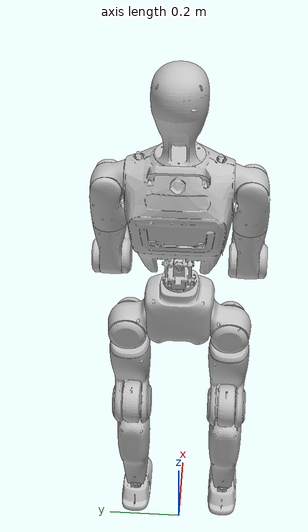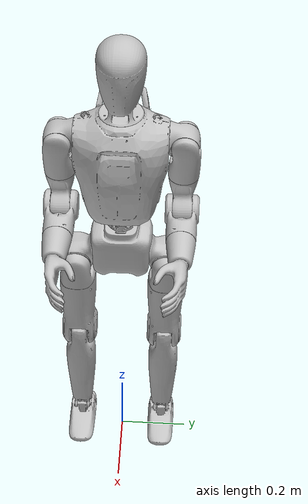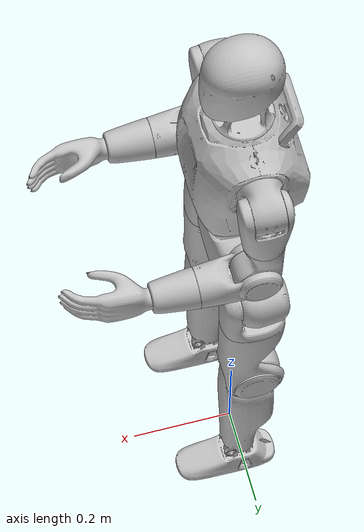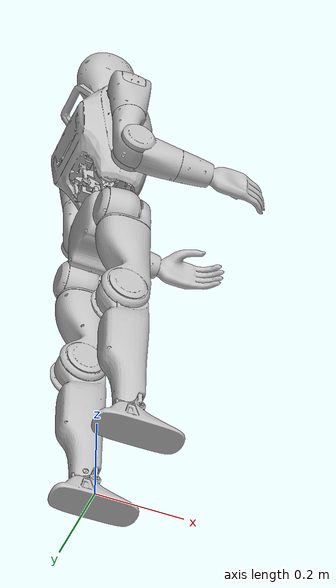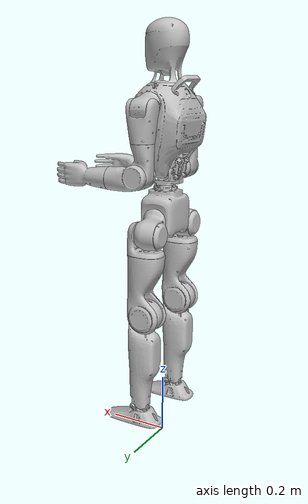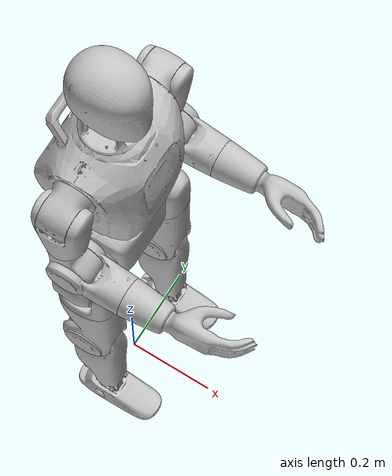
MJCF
<mujoco model="LRS-XURDF0210QJ">
  <compiler angle="radian" meshdir="./meshes/"/>

  <asset>
    <mesh name="pelvis" file="pelvis.STL"/>
    <mesh name="waist_yaw_link" file="waist_yaw_link.STL"/>
    <mesh name="waist_roll_link" file="waist_roll_link.STL"/>
    <mesh name="waist_pitch_link" file="waist_pitch_link.STL"/>
    <mesh name="head_link" file="head_link.STL"/>
    <mesh name="left_shoulder_pitch_link" file="left_shoulder_pitch_link.STL"/>
    <mesh name="left_shoulder_roll_link" file="left_shoulder_roll_link.STL"/>
    <mesh name="left_shoulder_yaw_link" file="left_shoulder_yaw_link.STL"/>
    <mesh name="left_elbow_link" file="left_elbow_link.STL"/>
    <mesh name="left_wrist_roll_link" file="left_wrist_roll_link.STL"/>
    <mesh name="right_shoulder_pitch_link" file="right_shoulder_pitch_link.STL"/>
    <mesh name="right_shoulder_roll_link" file="right_shoulder_roll_link.STL"/>
    <mesh name="right_shoulder_yaw_link" file="right_shoulder_yaw_link.STL"/>
    <mesh name="right_elbow_link" file="right_elbow_link.STL"/>
    <mesh name="right_wrist_roll_link" file="right_wrist_roll_link.STL"/>
    <mesh name="left_hip_pitch_link" file="left_hip_pitch_link.STL"/>
    <mesh name="left_hip_roll_link" file="left_hip_roll_link.STL"/>
    <mesh name="left_hip_yaw_link" file="left_hip_yaw_link.STL"/>
    <mesh name="left_knee_link" file="left_knee_link.STL"/>
    <mesh name="left_ankle_pitch_link" file="left_ankle_pitch_link.STL"/>
    <mesh name="left_ankle_roll_link" file="left_ankle_roll_link.STL"/>
    <mesh name="right_hip_pitch_link" file="right_hip_pitch_link.STL"/>
    <mesh name="right_hip_yaw_link" file="right_hip_yaw_link.STL"/>
    <mesh name="right_knee_link" file="right_knee_link.STL"/>
    <mesh name="right_ankle_pitch_link" file="right_ankle_pitch_link.STL"/>
    <mesh name="right_ankle_roll_link" file="right_ankle_roll_link.STL"/>
  </asset>

  <worldbody>
    <body name = 'pelvis' pos = '0 0 0.9' euler = '0 0 0'>
      <inertial pos="-0.00103313928053411 0.000382585123602887 -0.0864613171896089" mass="1.84951140169722" diaginertia="0.00320766832900481 0.00259257440658102 0.00273340858466264" />
      <joint type="free" />
      <site name = "imu" size = "0.01" pos = "0 0 0" />
      <geom type="mesh" contype="0" conaffinity="0" group="1" density="0" rgba="0.752941 0.752941 0.752941 1" mesh="pelvis"/>
      <geom size="0.06 0.075 0.06" pos="0 0 -0.1" type="box" contype="1" conaffinity="6" group="4" rgba="0.752941 0.752941 0.752941 1"/>
      <geom type="mesh" contype="0" conaffinity="0" group="1" density="0" rgba="0.752941 0.752941 0.752941 1" mesh="waist_yaw_link"/>
      <geom pos="0 -1.9533e-05 0.041" quat="1 0 0 0" type="mesh" contype="0" conaffinity="0" group="1" density="0" rgba="0.752941 0.752941 0.752941 1" mesh="waist_roll_link"/>
      <geom pos="0 -1.9533e-05 0.041" type="mesh" contype="0" conaffinity="0" group="1" density="0" rgba="0.752941 0.752941 0.752941 1" mesh="waist_pitch_link"/>
      <geom size="0.1 0.1125 0.15" pos="0 -1.9533e-05 0.181" type="box" contype="1" conaffinity="6" group="4" rgba="0.752941 0.752941 0.752941 1"/>
      <geom pos="-0.001747 -1.9533e-05 0.32738" quat="1 0 0 0" type="mesh" contype="0" conaffinity="0" group="1" density="0" rgba="0.752941 0.752941 0.752941 1" mesh="head_link"/>
      <geom size="0.075 0.06 0.075" pos="-0.001747 -1.9533e-05 0.45738" type="box" contype="1" conaffinity="6" group="4" rgba="0.752941 0.752941 0.752941 1"/>
      <geom pos="-1.4518e-05 0.11358 0.26628" type="mesh" contype="0" conaffinity="0" group="1" density="0" rgba="0.752941 0.752941 0.752941 1" mesh="left_shoulder_pitch_link"/>
      <geom pos="0.0275005 0.15758 0.254266" quat="1 0 0 0" type="mesh" contype="0" conaffinity="0" group="1" density="0" rgba="0.752941 0.752941 0.752941 1" mesh="left_shoulder_roll_link"/>
      <geom size="0.035 0.035 0.075" pos="-0.00249952 0.15758 0.204266" type="box" contype="1" conaffinity="6" group="4" rgba="0.752941 0.752941 0.752941 1"/>
      <geom pos="4.82e-07 0.157566 0.149676" quat="1 0 0 0" type="mesh" contype="0" conaffinity="0" group="1" density="0" rgba="0.752941 0.752941 0.752941 1" mesh="left_shoulder_yaw_link"/>
      <geom pos="0.0119855 0.185081 0.043976" quat="0.707105 0 -0.707108 0" type="mesh" contype="0" conaffinity="0" group="1" density="0" rgba="0.752941 0.752941 0.752941 1" mesh="left_elbow_link"/>
      <geom size="0.035 0.035 0.1" pos="0.111985 0.155081 0.0439764" quat="0.707105 0 -0.707108 0" type="box" contype="1" conaffinity="6" group="4" rgba="0.752941 0.752941 0.752941 1"/>
      <geom pos="0.121686 0.157581 0.0319764" quat="0.707105 0 -0.707108 0" type="mesh" contype="0" conaffinity="0" group="1" density="0" rgba="0.752941 0.752941 0.752941 1" mesh="left_wrist_roll_link"/>
      <geom size="0.035 0.04 0.075" pos="0.291686 0.137581 0.031977" quat="0.707105 0 -0.707108 0" type="box" contype="1" conaffinity="6" group="4" rgba="0.752941 0.752941 0.752941 1"/>
      <geom pos="-1.4518e-05 -0.11362 0.26628" type="mesh" contype="0" conaffinity="0" group="1" density="0" rgba="0.752941 0.752941 0.752941 1" mesh="right_shoulder_pitch_link"/>
      <geom pos="0.0275005 -0.15662 0.254266" quat="1 0 0 0" type="mesh" contype="0" conaffinity="0" group="1" density="0" rgba="0.752941 0.752941 0.752941 1" mesh="right_shoulder_roll_link"/>
      <geom size="0.035 0.035 0.075" pos="-0.00249952 -0.15662 0.204266" type="box" contype="1" conaffinity="6" group="4" rgba="0.752941 0.752941 0.752941 1"/>
      <geom pos="4.82e-07 -0.156605 0.149676" quat="1 0 0 0" type="mesh" contype="0" conaffinity="0" group="1" density="0" rgba="0.752941 0.752941 0.752941 1" mesh="right_shoulder_yaw_link"/>
      <geom pos="0.0119855 -0.18412 0.043976" quat="0.707105 0 -0.707108 0" type="mesh" contype="0" conaffinity="0" group="1" density="0" rgba="0.752941 0.752941 0.752941 1" mesh="right_elbow_link"/>
      <geom size="0.035 0.035 0.1" pos="0.111985 -0.15412 0.0439764" quat="0.707105 0 -0.707108 0" type="box" contype="1" conaffinity="6" group="4" rgba="0.752941 0.752941 0.752941 1"/>
      <geom pos="0.121686 -0.15662 0.0319764" quat="0.707105 0 -0.707108 0" type="mesh" contype="0" conaffinity="0" group="1" density="0" rgba="0.752941 0.752941 0.752941 1" mesh="right_wrist_roll_link"/>
      <geom size="0.035 0.04 0.075" pos="0.291686 -0.13662 0.031977" quat="0.707105 0 -0.707108 0" type="box" contype="1" conaffinity="6" group="4" rgba="0.752941 0.752941 0.752941 1"/>
      <body name="left_hip_pitch_link" pos="0 0.07298 -0.1131">
        <inertial pos="-0.0113615 0.0470713 -0.0342248" quat="0.919133 0.355089 0.162199 -0.0528993" mass="1.32446" diaginertia="0.00146172 0.00139988 0.0010828"/>
        <joint name="left_hip_pitch_joint" pos="0 0 0" axis="0 1 0" range="-2.69 2.69" actuatorfrcrange="-90 90"/>
        <geom type="mesh" contype="0" conaffinity="0" group="1" density="0" rgba="0.752941 0.752941 0.752941 1" mesh="left_hip_pitch_link"/>
        <body name="left_hip_roll_link" pos="0.019 0.05008 -0.036909">
          <inertial pos="0.0045843 2.09e-05 -0.0296417" quat="0.968845 0 0.247668 0" mass="0.34034" diaginertia="0.000505551 0.0004944 0.000232649"/>
          <joint name="left_hip_roll_joint" pos="0 0 0" axis="1 0 0" range="-0.52 2.97" actuatorfrcrange="-60 60"/>
          <geom type="mesh" contype="0" conaffinity="0" group="1" density="0" rgba="0.752941 0.752941 0.752941 1" mesh="left_hip_roll_link"/>
          <geom size="0.06 0.04 0.1" pos="-0.016 0 -0.1" type="box" contype="1" conaffinity="6" group="4" rgba="0.752941 0.752941 0.752941 1"/>
          <body name="left_hip_yaw_link" pos="-0.016491 0 -0.066991">
            <inertial pos="0.003642 0.007695 -0.0796255" quat="0.621261 0.0394935 -0.066286 0.779796" mass="2.09922" diaginertia="0.0113902 0.0112647 0.00236318"/>
            <joint name="left_hip_yaw_joint" pos="0 0 0" axis="0 0 1" range="-2.76 2.76" actuatorfrcrange="-60 60"/>
            <geom type="mesh" contype="0" conaffinity="0" group="1" density="0" rgba="0.752941 0.752941 0.752941 1" mesh="left_hip_yaw_link"/>
            <body name="left_knee_link" pos="-0.0025064 0.02402 -0.21064">
              <inertial pos="0.0064688 -0.0264025 -0.102822" quat="0.728248 -0.0100789 -0.0310592 0.684535" mass="3.49098" diaginertia="0.0328485 0.0324447 0.0027993"/>
              <joint name="left_knee_joint" pos="0 0 0" axis="0 1 0" range="-0.09 2.53" actuatorfrcrange="-90 90"/>
              <geom type="mesh" contype="0" conaffinity="0" group="1" density="0" rgba="0.752941 0.752941 0.752941 1" mesh="left_knee_link"/>
              <geom size="0.05 0.0375 0.16" pos="0.01 -0.025 -0.15" type="box" contype="1" conaffinity="6" group="4" rgba="0.752941 0.752941 0.752941 1"/>
              <body name="left_ankle_pitch_link" pos="0.014 -0.024 -0.3225">
                <inertial pos="0 0 -0.0072252" mass="0.0528192" diaginertia="6.7e-06 5.9e-06 3.3e-06"/>
                <joint name="left_ankle_pitch_joint" pos="0 0 0" axis="0 1 0" range="-0.52 0.87" actuatorfrcrange="-20 20"/>
                <geom type="mesh" contype="0" conaffinity="0" group="1" density="0" rgba="0.752941 0.752941 0.752941 1" mesh="left_ankle_pitch_link"/>
                <body name="left_ankle_roll_link" pos="0 0 -0.0165">
                  <inertial pos="0.0154117 5.7e-06 -0.0291423" quat="0.484591 0.515035 0.514902 0.484547" mass="0.480722" diaginertia="0.0009044 0.000839975 0.000332225"/>
                  <joint name="left_ankle_roll_joint" pos="0 0 0" axis="1 0 0" range="-0.26 0.26" actuatorfrcrange="-20 20"/>
                  <geom type="mesh" contype="0" conaffinity="0" group="1" density="0" rgba="0.752941 0.752941 0.752941 1" mesh="left_ankle_roll_link"/>
                  <geom size="0.1 0.05 0.01" pos="0.023 0 -0.0425" type="box" contype="1" conaffinity="6" group="4" rgba="0.752941 0.752941 0.752941 1"/>
                </body>
              </body>
            </body>
          </body>
        </body>
      </body>
      <body name="right_hip_pitch_link" pos="0 -0.07302 -0.1131">
        <inertial pos="-0.0113616 -0.0470894 -0.0342258" quat="0.919155 -0.355384 0.161893 0.0514442" mass="1.32442" diaginertia="0.00146183 0.00139911 0.00108355"/>
        <joint name="right_hip_pitch_joint" pos="0 0 0" axis="0 1 0" range="-2.69 2.69" actuatorfrcrange="-90 90"/>
        <geom type="mesh" contype="0" conaffinity="0" group="1" density="0" rgba="0.752941 0.752941 0.752941 1" mesh="right_hip_pitch_link"/>
        <body name="right_hip_roll_link" pos="0.019 -0.05008 -0.036909">
          <inertial pos="0.0081543 0.0053028 -0.0351489" quat="0.968845 0 0.247668 0" mass="0.34034" diaginertia="0.000505551 0.0004944 0.000232649"/>
          <joint name="right_hip_roll_joint" pos="0 0 0" axis="1 0 0" range="-2.97 0.52" actuatorfrcrange="-60 60"/>
          <geom type="mesh" contype="0" conaffinity="0" group="1" density="0" rgba="0.752941 0.752941 0.752941 1" mesh="left_hip_roll_link"/>
          <geom size="0.06 0.04 0.1" pos="-0.016 0 -0.1" type="box" contype="1" conaffinity="6" group="4" rgba="0.752941 0.752941 0.752941 1"/>
          <body name="right_hip_yaw_link" pos="-0.016491 0 -0.066991">
            <inertial pos="0.0036411 -0.0076676 -0.0796285" quat="0.777885 -0.0661079 0.0396626 0.62366" mass="2.09923" diaginertia="0.01139 0.0112653 0.00236323"/>
            <joint name="right_hip_yaw_joint" pos="0 0 0" axis="0 0 1" range="-2.76 2.76" actuatorfrcrange="-60 60"/>
            <geom type="mesh" contype="0" conaffinity="0" group="1" density="0" rgba="0.752941 0.752941 0.752941 1" mesh="right_hip_yaw_link"/>
            <body name="right_knee_link" pos="-0.0025064 -0.02398 -0.21064">
              <inertial pos="0.0064699 0.0264002 -0.102829" quat="0.683693 -0.0310624 -0.010066 0.729039" mass="3.49108" diaginertia="0.0328558 0.0324517 0.00279947"/>
              <joint name="right_knee_joint" pos="0 0 0" axis="0 1 0" range="-0.09 2.53" actuatorfrcrange="-90 90"/>
              <geom type="mesh" contype="0" conaffinity="0" group="1" density="0" rgba="0.752941 0.752941 0.752941 1" mesh="right_knee_link"/>
              <geom size="0.05 0.0375 0.16" pos="0.01 0.025 -0.15" type="box" contype="1" conaffinity="6" group="4" rgba="0.752941 0.752941 0.752941 1"/>
              <body name="right_ankle_pitch_link" pos="0.014 0.024 -0.3225">
                <inertial pos="0 0 -0.0072252" mass="0.0528192" diaginertia="6.7e-06 5.9e-06 3.3e-06"/>
                <joint name="right_ankle_pitch_joint" pos="0 0 0" axis="0 1 0" range="-0.52 0.87" actuatorfrcrange="-20 20"/>
                <geom type="mesh" contype="0" conaffinity="0" group="1" density="0" rgba="0.752941 0.752941 0.752941 1" mesh="right_ankle_pitch_link"/>
                <body name="right_ankle_roll_link" pos="0 0 -0.0165">
                  <inertial pos="0.0154117 5.7e-06 -0.0291596" quat="0.484553 0.515071 0.514938 0.484509" mass="0.480722" diaginertia="0.000904 0.000839986 0.000331814"/>
                  <joint name="right_ankle_roll_joint" pos="0 0 0" axis="1 0 0" range="-0.26 0.26" actuatorfrcrange="-20 20"/>
                  <geom type="mesh" contype="0" conaffinity="0" group="1" density="0" rgba="0.752941 0.752941 0.752941 1" mesh="right_ankle_roll_link"/>
                  <geom size="0.1 0.05 0.01" pos="0.023 0 -0.0425" type="box" contype="1" conaffinity="6" group="4" rgba="0.752941 0.752941 0.752941 1"/>
                </body>
              </body>
            </body>
          </body>
        </body>
      </body>
    </body>
  </worldbody>

<actuator>
    <motor name="left_hip_pitch"      gear="1" joint="left_hip_pitch_joint"/>
    <motor name="left_hip_roll"       gear="1" joint="left_hip_roll_joint"/>
    <motor name="left_hip_yaw"        gear="1" joint="left_hip_yaw_joint"/>
    <motor name="left_knee"           gear="1" joint="left_knee_joint"/>
    <motor name="left_ankle_pitch"    gear="1" joint="left_ankle_pitch_joint"/>
    <motor name="left_ankle_roll"     gear="1" joint="left_ankle_roll_joint"/>
    <motor name="right_hip_pitch"      gear="1" joint="right_hip_pitch_joint"/>
    <motor name="right_hip_roll"       gear="1" joint="right_hip_roll_joint"/>
    <motor name="right_hip_yaw"        gear="1" joint="right_hip_yaw_joint"/>
    <motor name="right_knee"           gear="1" joint="right_knee_joint"/>
    <motor name="right_ankle_pitch"    gear="1" joint="right_ankle_pitch_joint"/>
    <motor name="right_ankle_roll"     gear="1" joint="right_ankle_roll_joint"/>
</actuator>

  <sensor>
    <jointpos name="left_hip_pitch"       joint="left_hip_pitch_joint"/>
    <jointpos name="left_hip_roll"        joint="left_hip_roll_joint"/>
    <jointpos name="left_hip_yaw"         joint="left_hip_yaw_joint"/>
    <jointpos name="left_knee"            joint="left_knee_joint"/>
    <jointpos name="left_ankle_pitch"     joint="left_ankle_pitch_joint"/>
    <jointpos name="left_ankle_roll"      joint="left_ankle_roll_joint"/>
    <jointpos name="right_hip_pitch"      joint="right_hip_pitch_joint"/>
    <jointpos name="right_hip_roll"       joint="right_hip_roll_joint"/>
    <jointpos name="right_hip_yaw"        joint="right_hip_yaw_joint"/>
    <jointpos name="right_knee"           joint="right_knee_joint"/>
    <jointpos name="right_ankle_pitch"    joint="right_ankle_pitch_joint"/>
    <jointpos name="right_ankle_roll"     joint="right_ankle_roll_joint"/>

    <jointvel name="left_hip_pitch_vel"       joint="left_hip_pitch_joint"/>
    <jointvel name="left_hip_roll_vel"        joint="left_hip_roll_joint"/>
    <jointvel name="left_hip_yaw_vel"         joint="left_hip_yaw_joint"/>
    <jointvel name="left_knee_vel"            joint="left_knee_joint"/>
    <jointvel name="left_ankle_pitch_vel"     joint="left_ankle_pitch_joint"/>
    <jointvel name="left_ankle_roll_vel"      joint="left_ankle_roll_joint"/>
    <jointvel name="right_hip_pitch_vel"      joint="right_hip_pitch_joint"/>
    <jointvel name="right_hip_roll_vel"       joint="right_hip_roll_joint"/>
    <jointvel name="right_hip_yaw_vel"        joint="right_hip_yaw_joint"/>
    <jointvel name="right_knee_vel"           joint="right_knee_joint"/>
    <jointvel name="right_ankle_pitch_vel"    joint="right_ankle_pitch_joint"/>
    <jointvel name="right_ankle_roll_vel"     joint="right_ankle_roll_joint"/>

  </sensor>
</mujoco>
